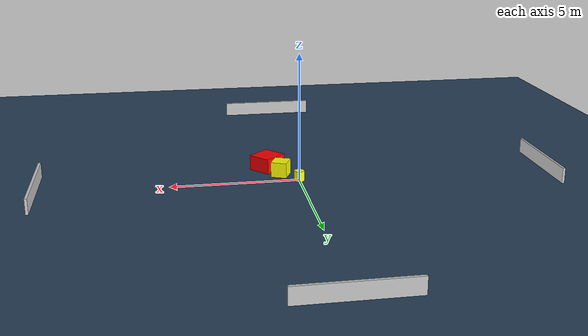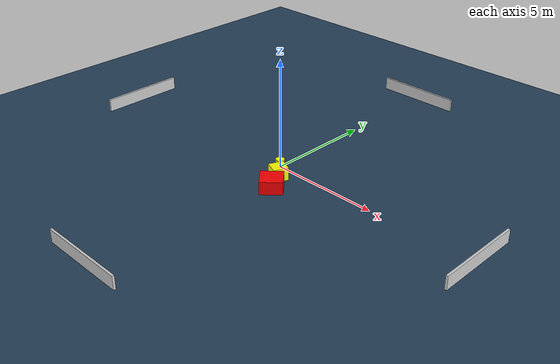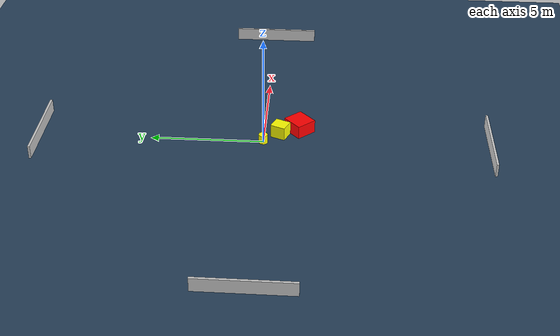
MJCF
<?xml version="1.0" ?>
<mujoco model="generated_environment">
  <option timestep="0.01" integrator="RK4" cone="elliptic"/>
  <default>
    <geom density="1"/>
  </default>
  <asset>
    <texture builtin="gradient" height="3072" name="skybox" rgb1="0.3 0.5 0.7" rgb2="0 0 0" type="skybox" width="512"/>
    <texture builtin="checker" height="300" name="groundplane" rgb1="0.2 0.3 0.4" rgb2="0.1 0.2 0.3" type="2d" width="300"/>
    <material name="groundplane" reflectance="0.2" texrepeat="5 5" texture="groundplane"/>
  </asset>
  <worldbody>
    <light dir="0 0 -1" directional="true" pos="0 0 1.5"/>
    <geom condim="3" friction="0.5 0.005 0.001" material="groundplane" name="floor" pos="0 0 0" size="0 0 0.05" type="plane"/>
    <body name="walls">
      <geom name="wall_1" condim="4" pos="-10.0 0.0 0.3" rgba="0.800000011920929 0.800000011920929 0.800000011920929 1.0" size="0.05 2.0 0.3" type="box"/>
      <geom name="wall_2" condim="4" pos="10.0 0.0 0.3" rgba="0.800000011920929 0.800000011920929 0.800000011920929 1.0" size="0.05 2.0 0.3" type="box"/>
      <geom name="wall_3" condim="4" pos="0.0 -10.0 0.3" rgba="0.800000011920929 0.800000011920929 0.800000011920929 1.0" size="2.0 0.05 0.3" type="box"/>
      <geom name="wall_4" condim="4" pos="0.0 10.0 0.3" rgba="0.800000011920929 0.800000011920929 0.800000011920929 1.0" size="2.0 0.05 0.3" type="box"/>
    </body>
    <body name="robot">
      <joint name="joint_x" type="slide" pos="0 0 0" axis="1 0 0"/>
      <joint name="joint_y" type="slide" pos="0 0 0" axis="0 1 0"/>
      <geom name="robot" type="cylinder" pos="0.0 0.0 0.2" size="0.2 0.2 0.0" mass="5.0" friction="1.0 0.005 0.0001" condim="4" rgba="1.0 1.0 0.0 1.0"/>
    </body>
    <body name="obstacle_1_movable">
      <geom name="obstacle_1_movable" condim="4" pos="0.625945367485517 -0.7299433534980165 0.3" euler="0 0 337.0886433625892" friction="0.0 0.005 0.001" rgba="1.0 1.0 0.0 1.0" size="0.3147567149833047 0.3426664710316052 0.3" type="box" mass="0.1"/>
      <joint type="free"/>
    </body>
    <body name="obstacle_2_static">
      <geom name="obstacle_2_static" condim="4" pos="1.0639536304808699 -1.5689117081161665 0.3" euler="0 0 42.214786925291705" friction="0.0 0.005 0.001" rgba="1.0 0.0 0.0 1.0" size="0.5024803015445147 0.4706790746321278 0.3" type="box"/>
    </body>
  </worldbody>
  <actuator>
    <motor name="actuator_x" joint="joint_x" gear="1" ctrlrange="-1 1"/>
    <motor name="actuator_y" joint="joint_y" gear="1" ctrlrange="-1 1"/>
  </actuator>
</mujoco>
